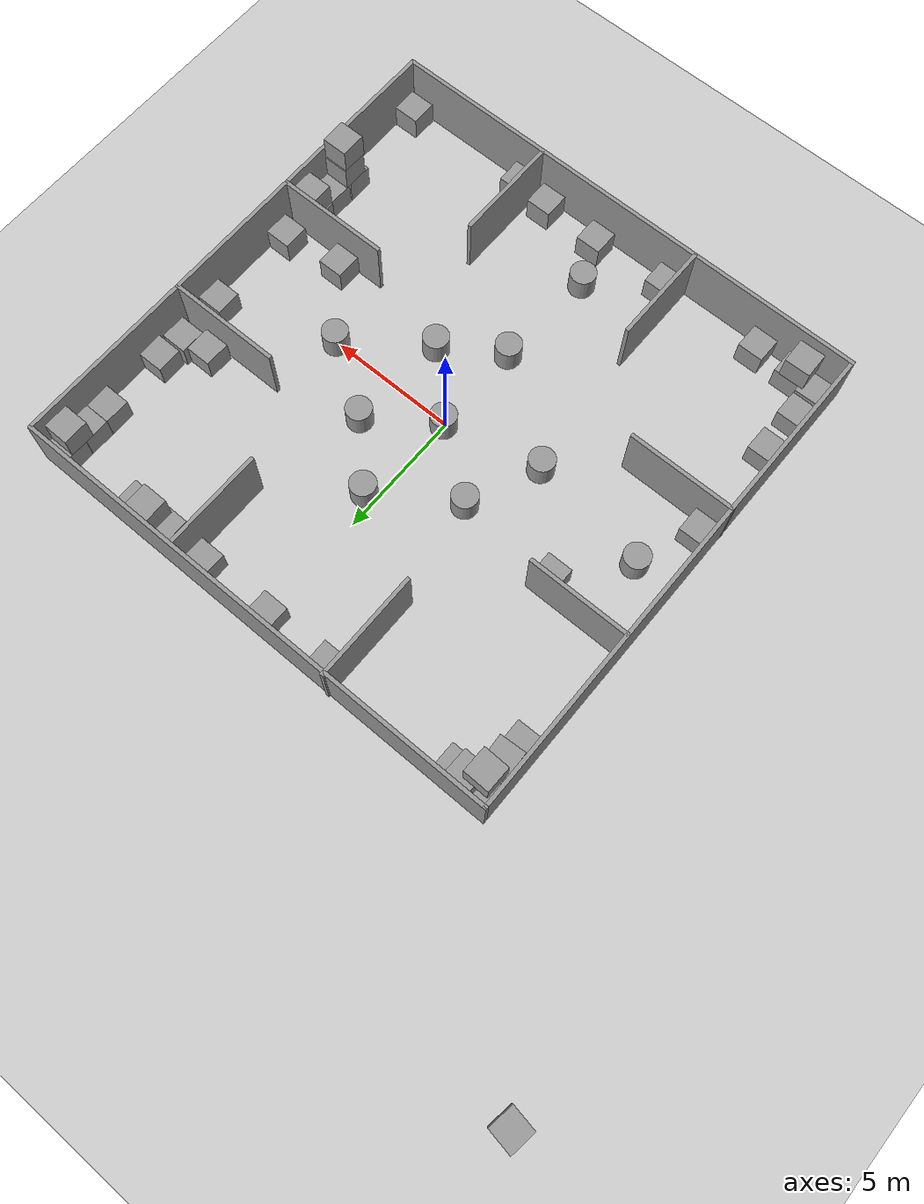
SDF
<sdf version="1.7">
 <world name="default">
  <light name="sun" type="directional">
   <pose>0 0 10 0 -0 0</pose>
   <diffuse>0.8 0.8 0.8 1</diffuse>
   <specular>0.2 0.2 0.2 1</specular>
   <attenuation>
    <range>1000</range>
    <constant>0.9</constant>
    <linear>0.01</linear>
    <quadratic>0.001</quadratic>
   </attenuation>
   <direction>-0.5 0.1 -0.9</direction>
   <spot><inner_angle>0</inner_angle><outer_angle>0</outer_angle><falloff>0</falloff></spot>
  </light>
  <model name="ground_plane">
   <static>1</static>
   <link name="link">
    <collision name="collision">
     <geometry><plane><normal>0 0 1</normal><size>100 100</size></plane></geometry>
     <surface>
      <contact><collide_bitmask>65535</collide_bitmask></contact>
      <friction><ode><mu>100</mu><mu2>50</mu2></ode></friction>
     </surface>
    </collision>
    <visual name="visual">
     <cast_shadows>0</cast_shadows>
     <geometry><plane><normal>0 0 1</normal><size>100 100</size></plane></geometry>
     <material>
      <script><uri>file://media/materials/scripts/gazebo.material</uri><name>Gazebo/Grey</name></script>
     </material>
    </visual>
   </link>
  </model>
  <gravity>0 0 -9.8</gravity>
  <magnetic_field>6e-06 2.3e-05 -4.2e-05</magnetic_field>
  <atmosphere type="adiabatic"/>
  <physics type="ode">
   <max_step_size>0.001</max_step_size>
   <real_time_factor>1</real_time_factor>
   <real_time_update_rate>1000</real_time_update_rate>
  </physics>
  <scene><ambient>0.4 0.4 0.4 1</ambient><background>0.7 0.7 0.7 1</background><shadows>1</shadows></scene>
  <spherical_coordinates>
   <surface_model>EARTH_WGS84</surface_model>
   <latitude_deg>0</latitude_deg>
   <longitude_deg>0</longitude_deg>
   <elevation>0</elevation>
   <heading_deg>0</heading_deg>
  </spherical_coordinates>
  <model name="Untitled">
   <pose>-0.022644 0.067356 0 0 -0 0</pose>
   <link name="Wall_0">
    <collision name="Wall_0_Collision">
     <geometry><box><size>20 0.15 2.5</size></box></geometry>
     <pose>0 0 1.25 0 -0 0</pose>
    </collision>
    <visual name="Wall_0_Visual">
     <pose>0 0 1.25 0 -0 0</pose>
     <geometry><box><size>20 0.15 2.5</size></box></geometry>
     <material>
      <script><uri>file://media/materials/scripts/gazebo.material</uri><name>Gazebo/Grey</name></script>
      <ambient>1 1 1 1</ambient>
     </material>
     <meta><layer>0</layer></meta>
    </visual>
    <pose>-9.91674 -0.030841 0 0 -0 -1.5708</pose>
   </link>
   <link name="Wall_11">
    <collision name="Wall_11_Collision">
     <geometry><box><size>4 0.15 2.5</size></box></geometry>
     <pose>0 0 1.25 0 -0 0</pose>
    </collision>
    <visual name="Wall_11_Visual">
     <pose>0 0 1.25 0 -0 0</pose>
     <geometry><box><size>4 0.15 2.5</size></box></geometry>
     <material>
      <script><uri>file://media/materials/scripts/gazebo.material</uri><name>Gazebo/Grey</name></script>
      <ambient>1 1 1 1</ambient>
     </material>
     <meta><layer>0</layer></meta>
    </visual>
    <pose>-7.94677 2.75708 0 0 -0 0</pose>
   </link>
   <link name="Wall_13">
    <collision name="Wall_13_Collision">
     <geometry><box><size>4.25 0.15 2.5</size></box></geometry>
     <pose>0 0 1.25 0 -0 0</pose>
    </collision>
    <visual name="Wall_13_Visual">
     <pose>0 0 1.25 0 -0 0</pose>
     <geometry><box><size>4.25 0.15 2.5</size></box></geometry>
     <material>
      <script><uri>file://media/materials/scripts/gazebo.material</uri><name>Gazebo/Grey</name></script>
      <ambient>1 1 1 1</ambient>
     </material>
     <meta><layer>0</layer></meta>
    </visual>
    <pose>-7.8833 -2.90348 0 0 -0 0</pose>
   </link>
   <link name="Wall_15">
    <collision name="Wall_15_Collision">
     <geometry><box><size>4.5 0.15 2.5</size></box></geometry>
     <pose>0 0 1.25 0 -0 0</pose>
    </collision>
    <visual name="Wall_15_Visual">
     <pose>0 0 1.25 0 -0 0</pose>
     <geometry><box><size>4.5 0.15 2.5</size></box></geometry>
     <material>
      <script><uri>file://media/materials/scripts/gazebo.material</uri><name>Gazebo/Grey</name></script>
      <ambient>1 1 1 1</ambient>
     </material>
     <meta><layer>0</layer></meta>
    </visual>
    <pose>7.7583 2.75123 0 0 -0 0</pose>
   </link>
   <link name="Wall_17">
    <collision name="Wall_17_Collision">
     <geometry><box><size>4.5 0.15 2.5</size></box></geometry>
     <pose>0 0 1.25 0 -0 0</pose>
    </collision>
    <visual name="Wall_17_Visual">
     <pose>0 0 1.25 0 -0 0</pose>
     <geometry><box><size>4.5 0.15 2.5</size></box></geometry>
     <material>
      <script><uri>file://media/materials/scripts/gazebo.material</uri><name>Gazebo/Grey</name></script>
      <ambient>1 1 1 1</ambient>
     </material>
     <meta><layer>0</layer></meta>
    </visual>
    <pose>7.74673 -2.90348 0 0 -0 0</pose>
   </link>
   <link name="Wall_19">
    <collision name="Wall_19_Collision">
     <geometry><box><size>4 0.15 2.5</size></box></geometry>
     <pose>0 0 1.25 0 -0 0</pose>
    </collision>
    <visual name="Wall_19_Visual">
     <pose>0 0 1.25 0 -0 0</pose>
     <geometry><box><size>4 0.15 2.5</size></box></geometry>
     <material>
      <script><uri>file://media/materials/scripts/gazebo.material</uri><name>Gazebo/Grey</name></script>
      <ambient>1 1 1 1</ambient>
     </material>
     <meta><layer>0</layer></meta>
    </visual>
    <pose>-3.22676 -7.96641 0 0 -0 -1.5708</pose>
   </link>
   <link name="Wall_21">
    <collision name="Wall_21_Collision">
     <geometry><box><size>4.25 0.15 2.5</size></box></geometry>
     <pose>0 0 1.25 0 -0 0</pose>
    </collision>
    <visual name="Wall_21_Visual">
     <pose>0 0 1.25 0 -0 0</pose>
     <geometry><box><size>4.25 0.15 2.5</size></box></geometry>
     <material>
      <script><uri>file://media/materials/scripts/gazebo.material</uri><name>Gazebo/Grey</name></script>
      <ambient>1 1 1 1</ambient>
     </material>
     <meta><layer>0</layer></meta>
    </visual>
    <pose>3.66436 -7.84529 0 0 -0 -1.5708</pose>
   </link>
   <link name="Wall_3">
    <collision name="Wall_3_Collision">
     <geometry><box><size>20 0.15 2.5</size></box></geometry>
     <pose>0 0 1.25 0 -0 0</pose>
    </collision>
    <visual name="Wall_3_Visual">
     <pose>0 0 1.25 0 -0 0</pose>
     <geometry><box><size>20 0.15 2.5</size></box></geometry>
     <material>
      <script><uri>file://media/materials/scripts/gazebo.material</uri><name>Gazebo/Grey</name></script>
      <ambient>1 1 1 1</ambient>
     </material>
     <meta><layer>0</layer></meta>
    </visual>
    <pose>0.008259 9.89416 0 0 -0 0</pose>
   </link>
   <link name="Wall_4">
    <collision name="Wall_4_Collision">
     <geometry><box><size>20 0.15 2.5</size></box></geometry>
     <pose>0 0 1.25 0 -0 0</pose>
    </collision>
    <visual name="Wall_4_Visual">
     <pose>0 0 1.25 0 -0 0</pose>
     <geometry><box><size>20 0.15 2.5</size></box></geometry>
     <material>
      <script><uri>file://media/materials/scripts/gazebo.material</uri><name>Gazebo/Grey</name></script>
      <ambient>1 1 1 1</ambient>
     </material>
     <meta><layer>0</layer></meta>
    </visual>
    <pose>9.93326 -0.030841 0 0 -0 -1.5708</pose>
   </link>
   <link name="Wall_5">
    <collision name="Wall_5_Collision">
     <geometry><box><size>20 0.15 2.5</size></box></geometry>
     <pose>0 0 1.25 0 -0 0</pose>
    </collision>
    <visual name="Wall_5_Visual">
     <pose>0 0 1.25 0 -0 0</pose>
     <geometry><box><size>20 0.15 2.5</size></box></geometry>
     <material>
      <script><uri>file://media/materials/scripts/gazebo.material</uri><name>Gazebo/Grey</name></script>
      <ambient>1 1 1 1</ambient>
     </material>
     <meta><layer>0</layer></meta>
    </visual>
    <pose>0.008259 -9.95584 0 0 -0 3.14159</pose>
   </link>
   <link name="Wall_7">
    <collision name="Wall_7_Collision">
     <geometry><box><size>4.25 0.15 2.5</size></box></geometry>
     <pose>0 0 1.25 0 -0 0</pose>
    </collision>
    <visual name="Wall_7_Visual">
     <pose>0 0 1.25 0 -0 0</pose>
     <geometry><box><size>4.25 0.15 2.5</size></box></geometry>
     <material>
      <script><uri>file://media/materials/scripts/gazebo.material</uri><name>Gazebo/Grey</name></script>
      <ambient>1 1 1 1</ambient>
     </material>
     <meta><layer>0</layer></meta>
    </visual>
    <pose>-3.34982 7.90584 0 0 -0 -1.5708</pose>
   </link>
   <link name="Wall_9">
    <collision name="Wall_9_Collision">
     <geometry><box><size>4 0.15 2.5</size></box></geometry>
     <pose>0 0 1.25 0 -0 0</pose>
    </collision>
    <visual name="Wall_9_Visual">
     <pose>0 0 1.25 0 -0 0</pose>
     <geometry><box><size>4 0.15 2.5</size></box></geometry>
     <material>
      <script><uri>file://media/materials/scripts/gazebo.material</uri><name>Gazebo/Grey</name></script>
      <ambient>1 1 1 1</ambient>
     </material>
     <meta><layer>0</layer></meta>
    </visual>
    <pose>3.41825 7.90779 0 0 -0 -1.5708</pose>
   </link>
   <static>1</static>
  </model>
  <model name="unit_cylinder">
   <pose>-2.51972 1.96821 0.499994 -2e-06 -0 -0</pose>
   <link name="link">
    <inertial>
     <mass>1</mass>
     <inertia><ixx>0.145833</ixx><ixy>0</ixy><ixz>0</ixz><iyy>0.145833</iyy><iyz>0</iyz><izz>0.125</izz></inertia>
    </inertial>
    <collision name="collision">
     <geometry><cylinder><radius>0.5</radius><length>1</length></cylinder></geometry>
    </collision>
    <visual name="visual">
     <geometry><cylinder><radius>0.5</radius><length>1</length></cylinder></geometry>
     <material>
      <script><name>Gazebo/Grey</name><uri>file://media/materials/scripts/gazebo.material</uri></script>
     </material>
    </visual>
   </link>
  </model>
  <model name="unit_cylinder_0">
   <pose>-3.69703 -0.791961 0.499994 -2e-06 -0 -0</pose>
   <link name="link">
    <inertial>
     <mass>1</mass>
     <inertia><ixx>0.145833</ixx><ixy>0</ixy><ixz>0</ixz><iyy>0.145833</iyy><iyz>0</iyz><izz>0.125</izz></inertia>
    </inertial>
    <collision name="collision">
     <geometry><cylinder><radius>0.5</radius><length>1</length></cylinder></geometry>
    </collision>
    <visual name="visual">
     <geometry><cylinder><radius>0.5</radius><length>1</length></cylinder></geometry>
     <material>
      <script><name>Gazebo/Grey</name><uri>file://media/materials/scripts/gazebo.material</uri></script>
     </material>
    </visual>
   </link>
  </model>
  <model name="unit_cylinder_1">
   <pose>0.011534 0.090169 0.499994 -2e-06 -0 -0</pose>
   <link name="link">
    <inertial>
     <mass>1</mass>
     <inertia><ixx>0.145833</ixx><ixy>0</ixy><ixz>0</ixz><iyy>0.145833</iyy><iyz>0</iyz><izz>0.125</izz></inertia>
    </inertial>
    <collision name="collision">
     <geometry><cylinder><radius>0.5</radius><length>1</length></cylinder></geometry>
    </collision>
    <visual name="visual">
     <geometry><cylinder><radius>0.5</radius><length>1</length></cylinder></geometry>
     <material>
      <script><name>Gazebo/Grey</name><uri>file://media/materials/scripts/gazebo.material</uri></script>
     </material>
    </visual>
   </link>
  </model>
  <model name="unit_cylinder_2">
   <pose>0.457979 3.87892 0.499996 2e-06 -0 0</pose>
   <link name="link">
    <inertial>
     <mass>1</mass>
     <inertia><ixx>0.145833</ixx><ixy>0</ixy><ixz>0</ixz><iyy>0.145833</iyy><iyz>0</iyz><izz>0.125</izz></inertia>
    </inertial>
    <collision name="collision">
     <geometry><cylinder><radius>0.5</radius><length>1</length></cylinder></geometry>
    </collision>
    <visual name="visual">
     <geometry><cylinder><radius>0.5</radius><length>1</length></cylinder></geometry>
     <material>
      <script><name>Gazebo/Grey</name><uri>file://media/materials/scripts/gazebo.material</uri></script>
     </material>
    </visual>
   </link>
  </model>
  <model name="unit_cylinder_3">
   <pose>5.15271 0.052836 0.499996 2e-06 -0 0</pose>
   <link name="link">
    <inertial>
     <mass>1</mass>
     <inertia><ixx>0.145833</ixx><ixy>0</ixy><ixz>0</ixz><iyy>0.145833</iyy><iyz>0</iyz><izz>0.125</izz></inertia>
    </inertial>
    <collision name="collision">
     <geometry><cylinder><radius>0.5</radius><length>1</length></cylinder></geometry>
    </collision>
    <visual name="visual">
     <geometry><cylinder><radius>0.5</radius><length>1</length></cylinder></geometry>
     <material>
      <script><name>Gazebo/Grey</name><uri>file://media/materials/scripts/gazebo.material</uri></script>
     </material>
    </visual>
   </link>
  </model>
  <model name="unit_cylinder_4">
   <pose>0.030398 -3.55191 0.499996 2e-06 -0 0</pose>
   <link name="link">
    <inertial>
     <mass>1</mass>
     <inertia><ixx>0.145833</ixx><ixy>0</ixy><ixz>0</ixz><iyy>0.145833</iyy><iyz>0</iyz><izz>0.125</izz></inertia>
    </inertial>
    <collision name="collision">
     <geometry><cylinder><radius>0.5</radius><length>1</length></cylinder></geometry>
    </collision>
    <visual name="visual">
     <geometry><cylinder><radius>0.5</radius><length>1</length></cylinder></geometry>
     <material>
      <script><name>Gazebo/Grey</name><uri>file://media/materials/scripts/gazebo.material</uri></script>
     </material>
    </visual>
   </link>
  </model>
  <model name="unit_box">
   <pose>-9.33373 9.36841 0.5 0 -0 0.009436</pose>
   <link name="link">
    <inertial>
     <mass>1</mass>
     <inertia>
      <ixx>0.166667</ixx>
      <ixy>0</ixy>
      <ixz>0</ixz>
      <iyy>0.166667</iyy>
      <iyz>0</iyz>
      <izz>0.166667</izz>
     </inertia>
    </inertial>
    <collision name="collision"><geometry><box><size>1 1 1</size></box></geometry></collision>
    <visual name="visual">
     <geometry><box><size>1 1 1</size></box></geometry>
     <material>
      <script><name>Gazebo/Grey</name><uri>file://media/materials/scripts/gazebo.material</uri></script>
     </material>
    </visual>
   </link>
  </model>
  <model name="unit_box_0">
   <pose>-9.34149 7.3644 0.500002 3e-06 -1e-05 0.014004</pose>
   <link name="link">
    <inertial>
     <mass>1</mass>
     <inertia>
      <ixx>0.166667</ixx>
      <ixy>0</ixy>
      <ixz>0</ixz>
      <iyy>0.166667</iyy>
      <iyz>0</iyz>
      <izz>0.166667</izz>
     </inertia>
    </inertial>
    <collision name="collision"><geometry><box><size>1 1 1</size></box></geometry></collision>
    <visual name="visual">
     <geometry><box><size>1 1 1</size></box></geometry>
     <material>
      <script><name>Gazebo/Grey</name><uri>file://media/materials/scripts/gazebo.material</uri></script>
     </material>
    </visual>
   </link>
  </model>
  <model name="unit_box_1">
   <pose>-16.3234 16.4438 0.499996 -3.14159 -9e-06 2.98602</pose>
   <link name="link">
    <inertial>
     <mass>1</mass>
     <inertia>
      <ixx>0.166667</ixx>
      <ixy>0</ixy>
      <ixz>0</ixz>
      <iyy>0.166667</iyy>
      <iyz>0</iyz>
      <izz>0.166667</izz>
     </inertia>
    </inertial>
    <collision name="collision"><geometry><box><size>1 1 1</size></box></geometry></collision>
    <visual name="visual">
     <geometry><box><size>1 1 1</size></box></geometry>
     <material>
      <script><name>Gazebo/Grey</name><uri>file://media/materials/scripts/gazebo.material</uri></script>
     </material>
    </visual>
   </link>
  </model>
  <model name="unit_box_2">
   <pose>-8.19201 9.29763 0.499975 -2.7e-05 -3.2e-05 -0.009539</pose>
   <link name="link">
    <inertial>
     <mass>1</mass>
     <inertia>
      <ixx>0.166667</ixx>
      <ixy>0</ixy>
      <ixz>0</ixz>
      <iyy>0.166667</iyy>
      <iyz>0</iyz>
      <izz>0.166667</izz>
     </inertia>
    </inertial>
    <collision name="collision"><geometry><box><size>1 1 1</size></box></geometry></collision>
    <visual name="visual">
     <geometry><box><size>1 1 1</size></box></geometry>
     <material>
      <script><name>Gazebo/Grey</name><uri>file://media/materials/scripts/gazebo.material</uri></script>
     </material>
    </visual>
   </link>
  </model>
  <model name="unit_box_3">
   <pose>-8.73523 9.37548 1.49999 -3.14157 2.8e-05 3.1202</pose>
   <link name="link">
    <inertial>
     <mass>1</mass>
     <inertia>
      <ixx>0.166667</ixx>
      <ixy>0</ixy>
      <ixz>0</ixz>
      <iyy>0.166667</iyy>
      <iyz>0</iyz>
      <izz>0.166667</izz>
     </inertia>
    </inertial>
    <collision name="collision"><geometry><box><size>1 1 1</size></box></geometry></collision>
    <visual name="visual">
     <geometry><box><size>1 1 1</size></box></geometry>
     <material>
      <script><name>Gazebo/Grey</name><uri>file://media/materials/scripts/gazebo.material</uri></script>
     </material>
    </visual>
   </link>
  </model>
  <model name="unit_box_4">
   <pose>-9.24022 8.36594 0.50002 -6e-06 -3.4e-05 0.014035</pose>
   <link name="link">
    <inertial>
     <mass>1</mass>
     <inertia>
      <ixx>0.166667</ixx>
      <ixy>0</ixy>
      <ixz>0</ixz>
      <iyy>0.166667</iyy>
      <iyz>0</iyz>
      <izz>0.166667</izz>
     </inertia>
    </inertial>
    <collision name="collision"><geometry><box><size>1 1 1</size></box></geometry></collision>
    <visual name="visual">
     <geometry><box><size>1 1 1</size></box></geometry>
     <material>
      <script><name>Gazebo/Grey</name><uri>file://media/materials/scripts/gazebo.material</uri></script>
     </material>
    </visual>
   </link>
  </model>
  <model name="unit_box_5">
   <pose>-9.33075 8.2872 1.49998 -0.000165 -9.1e-05 0.06148</pose>
   <link name="link">
    <inertial>
     <mass>1</mass>
     <inertia>
      <ixx>0.166667</ixx>
      <ixy>0</ixy>
      <ixz>0</ixz>
      <iyy>0.166667</iyy>
      <iyz>0</iyz>
      <izz>0.166667</izz>
     </inertia>
    </inertial>
    <collision name="collision"><geometry><box><size>1 1 1</size></box></geometry></collision>
    <visual name="visual">
     <geometry><box><size>1 1 1</size></box></geometry>
     <material>
      <script><name>Gazebo/Grey</name><uri>file://media/materials/scripts/gazebo.material</uri></script>
     </material>
    </visual>
   </link>
  </model>
  <model name="unit_box_6">
   <pose>-9.27927 9.13106 2.49998 -4.5e-05 -0.000261 -0.017258</pose>
   <link name="link">
    <inertial>
     <mass>1</mass>
     <inertia>
      <ixx>0.166667</ixx>
      <ixy>0</ixy>
      <ixz>0</ixz>
      <iyy>0.166667</iyy>
      <iyz>0</iyz>
      <izz>0.166667</izz>
     </inertia>
    </inertial>
    <collision name="collision"><geometry><box><size>1 1 1</size></box></geometry></collision>
    <visual name="visual">
     <geometry><box><size>1 1 1</size></box></geometry>
     <material>
      <script><name>Gazebo/Grey</name><uri>file://media/materials/scripts/gazebo.material</uri></script>
     </material>
    </visual>
   </link>
  </model>
  <model name="unit_box_7">
   <pose>-2.79621 9.38516 0.499995 -0 -1e-05 0.002491</pose>
   <link name="link">
    <inertial>
     <mass>1</mass>
     <inertia>
      <ixx>0.166667</ixx>
      <ixy>0</ixy>
      <ixz>0</ixz>
      <iyy>0.166667</iyy>
      <iyz>0</iyz>
      <izz>0.166667</izz>
     </inertia>
    </inertial>
    <collision name="collision"><geometry><box><size>1 1 1</size></box></geometry></collision>
    <visual name="visual">
     <geometry><box><size>1 1 1</size></box></geometry>
     <material>
      <script><name>Gazebo/Grey</name><uri>file://media/materials/scripts/gazebo.material</uri></script>
     </material>
    </visual>
   </link>
  </model>
  <model name="unit_box_8">
   <pose>2.7981 9.37789 0.499995 0 1e-05 0</pose>
   <link name="link">
    <inertial>
     <mass>1</mass>
     <inertia>
      <ixx>0.166667</ixx>
      <ixy>0</ixy>
      <ixz>0</ixz>
      <iyy>0.166667</iyy>
      <iyz>0</iyz>
      <izz>0.166667</izz>
     </inertia>
    </inertial>
    <collision name="collision"><geometry><box><size>1 1 1</size></box></geometry></collision>
    <visual name="visual">
     <geometry><box><size>1 1 1</size></box></geometry>
     <material>
      <script><name>Gazebo/Grey</name><uri>file://media/materials/scripts/gazebo.material</uri></script>
     </material>
    </visual>
   </link>
  </model>
  <model name="unit_box_9">
   <pose>-0.107896 9.38651 0.5 0 0 -4e-06</pose>
   <link name="link">
    <inertial>
     <mass>1</mass>
     <inertia>
      <ixx>0.166667</ixx>
      <ixy>0</ixy>
      <ixz>0</ixz>
      <iyy>0.166667</iyy>
      <iyz>0</iyz>
      <izz>0.166667</izz>
     </inertia>
    </inertial>
    <collision name="collision"><geometry><box><size>1 1 1</size></box></geometry></collision>
    <visual name="visual">
     <geometry><box><size>1 1 1</size></box></geometry>
     <material>
      <script><name>Gazebo/Grey</name><uri>file://media/materials/scripts/gazebo.material</uri></script>
     </material>
    </visual>
   </link>
  </model>
  <model name="unit_box_10">
   <pose>9.3312 9.38343 0.499984 -1e-06 -1e-06 -0.004896</pose>
   <link name="link">
    <inertial>
     <mass>1</mass>
     <inertia>
      <ixx>0.166667</ixx>
      <ixy>0</ixy>
      <ixz>0</ixz>
      <iyy>0.166667</iyy>
      <iyz>0</iyz>
      <izz>0.166667</izz>
     </inertia>
    </inertial>
    <collision name="collision"><geometry><box><size>1 1 1</size></box></geometry></collision>
    <visual name="visual">
     <geometry><box><size>1 1 1</size></box></geometry>
     <material>
      <script><name>Gazebo/Grey</name><uri>file://media/materials/scripts/gazebo.material</uri></script>
     </material>
    </visual>
   </link>
  </model>
  <model name="unit_box_11">
   <pose>9.33141 8.37498 0.500002 0 -4e-06 -0.002129</pose>
   <link name="link">
    <inertial>
     <mass>1</mass>
     <inertia>
      <ixx>0.166667</ixx>
      <ixy>0</ixy>
      <ixz>0</ixz>
      <iyy>0.166667</iyy>
      <iyz>0</iyz>
      <izz>0.166667</izz>
     </inertia>
    </inertial>
    <collision name="collision"><geometry><box><size>1 1 1</size></box></geometry></collision>
    <visual name="visual">
     <geometry><box><size>1 1 1</size></box></geometry>
     <material>
      <script><name>Gazebo/Grey</name><uri>file://media/materials/scripts/gazebo.material</uri></script>
     </material>
    </visual>
   </link>
  </model>
  <model name="unit_box_12">
   <pose>9.33243 7.37199 0.499995 0 -1e-05 0.002532</pose>
   <link name="link">
    <inertial>
     <mass>1</mass>
     <inertia>
      <ixx>0.166667</ixx>
      <ixy>0</ixy>
      <ixz>0</ixz>
      <iyy>0.166667</iyy>
      <iyz>0</iyz>
      <izz>0.166667</izz>
     </inertia>
    </inertial>
    <collision name="collision"><geometry><box><size>1 1 1</size></box></geometry></collision>
    <visual name="visual">
     <geometry><box><size>1 1 1</size></box></geometry>
     <material>
      <script><name>Gazebo/Grey</name><uri>file://media/materials/scripts/gazebo.material</uri></script>
     </material>
    </visual>
   </link>
  </model>
  <model name="unit_box_13">
   <pose>9.33186 9.04643 1.49998 -2e-05 1.3e-05 -0.007032</pose>
   <link name="link">
    <inertial>
     <mass>1</mass>
     <inertia>
      <ixx>0.166667</ixx>
      <ixy>0</ixy>
      <ixz>0</ixz>
      <iyy>0.166667</iyy>
      <iyz>0</iyz>
      <izz>0.166667</izz>
     </inertia>
    </inertial>
    <collision name="collision"><geometry><box><size>1 1 1</size></box></geometry></collision>
    <visual name="visual">
     <geometry><box><size>1 1 1</size></box></geometry>
     <material>
      <script><name>Gazebo/Grey</name><uri>file://media/materials/scripts/gazebo.material</uri></script>
     </material>
    </visual>
   </link>
  </model>
  <model name="unit_box_14">
   <pose>4.59854 9.29065 0.5 0 -0 0.000502</pose>
   <link name="link">
    <inertial>
     <mass>1</mass>
     <inertia>
      <ixx>0.166667</ixx>
      <ixy>0</ixy>
      <ixz>0</ixz>
      <iyy>0.166667</iyy>
      <iyz>0</iyz>
      <izz>0.166667</izz>
     </inertia>
    </inertial>
    <collision name="collision"><geometry><box><size>1 1 1</size></box></geometry></collision>
    <visual name="visual">
     <geometry><box><size>1 1 1</size></box></geometry>
     <material>
      <script><name>Gazebo/Grey</name><uri>file://media/materials/scripts/gazebo.material</uri></script>
     </material>
    </visual>
   </link>
  </model>
  <model name="unit_box_15">
   <pose>9.33562 1.68213 0.499995 -1e-05 -0 -6e-06</pose>
   <link name="link">
    <inertial>
     <mass>1</mass>
     <inertia>
      <ixx>0.166667</ixx>
      <ixy>0</ixy>
      <ixz>0</ixz>
      <iyy>0.166667</iyy>
      <iyz>0</iyz>
      <izz>0.166667</izz>
     </inertia>
    </inertial>
    <collision name="collision"><geometry><box><size>1 1 1</size></box></geometry></collision>
    <visual name="visual">
     <geometry><box><size>1 1 1</size></box></geometry>
     <material>
      <script><name>Gazebo/Grey</name><uri>file://media/materials/scripts/gazebo.material</uri></script>
     </material>
    </visual>
   </link>
  </model>
  <model name="unit_cylinder_5">
   <pose>2.4624 1.81745 0.499994 -3e-06 -1e-06 -0</pose>
   <link name="link">
    <inertial>
     <mass>1</mass>
     <inertia><ixx>0.145833</ixx><ixy>0</ixy><ixz>0</ixz><iyy>0.145833</iyy><iyz>0</iyz><izz>0.125</izz></inertia>
    </inertial>
    <collision name="collision">
     <geometry><cylinder><radius>0.5</radius><length>1</length></cylinder></geometry>
    </collision>
    <visual name="visual">
     <geometry><cylinder><radius>0.5</radius><length>1</length></cylinder></geometry>
     <material>
      <script><name>Gazebo/Grey</name><uri>file://media/materials/scripts/gazebo.material</uri></script>
     </material>
    </visual>
   </link>
  </model>
  <model name="unit_cylinder_6">
   <pose>2.22137 -2.10976 0.499994 -3e-06 -1e-06 -0</pose>
   <link name="link">
    <inertial>
     <mass>1</mass>
     <inertia><ixx>0.145833</ixx><ixy>0</ixy><ixz>0</ixz><iyy>0.145833</iyy><iyz>0</iyz><izz>0.125</izz></inertia>
    </inertial>
    <collision name="collision">
     <geometry><cylinder><radius>0.5</radius><length>1</length></cylinder></geometry>
    </collision>
    <visual name="visual">
     <geometry><cylinder><radius>0.5</radius><length>1</length></cylinder></geometry>
     <material>
      <script><name>Gazebo/Grey</name><uri>file://media/materials/scripts/gazebo.material</uri></script>
     </material>
    </visual>
   </link>
  </model>
  <model name="unit_cylinder_7">
   <pose>-8.3736 -0.074974 0.499994 -3e-06 -1e-06 -0</pose>
   <link name="link">
    <inertial>
     <mass>1</mass>
     <inertia><ixx>0.145833</ixx><ixy>0</ixy><ixz>0</ixz><iyy>0.145833</iyy><iyz>0</iyz><izz>0.125</izz></inertia>
    </inertial>
    <collision name="collision">
     <geometry><cylinder><radius>0.5</radius><length>1</length></cylinder></geometry>
    </collision>
    <visual name="visual">
     <geometry><cylinder><radius>0.5</radius><length>1</length></cylinder></geometry>
     <material>
      <script><name>Gazebo/Grey</name><uri>file://media/materials/scripts/gazebo.material</uri></script>
     </material>
    </visual>
   </link>
  </model>
  <model name="unit_cylinder_8">
   <pose>-0.192852 -7.59936 0.499996 3e-06 1e-06 -0</pose>
   <link name="link">
    <inertial>
     <mass>1</mass>
     <inertia><ixx>0.145833</ixx><ixy>0</ixy><ixz>0</ixz><iyy>0.145833</iyy><iyz>0</iyz><izz>0.125</izz></inertia>
    </inertial>
    <collision name="collision">
     <geometry><cylinder><radius>0.5</radius><length>1</length></cylinder></geometry>
    </collision>
    <visual name="visual">
     <geometry><cylinder><radius>0.5</radius><length>1</length></cylinder></geometry>
     <material>
      <script><name>Gazebo/Grey</name><uri>file://media/materials/scripts/gazebo.material</uri></script>
     </material>
    </visual>
   </link>
  </model>
  <model name="unit_box_16">
   <pose>-9.35028 -9.11788 0.499997 7e-06 -0 0.024398</pose>
   <link name="link">
    <inertial>
     <mass>1</mass>
     <inertia>
      <ixx>0.166667</ixx>
      <ixy>0</ixy>
      <ixz>0</ixz>
      <iyy>0.166667</iyy>
      <iyz>0</iyz>
      <izz>0.166667</izz>
     </inertia>
    </inertial>
    <collision name="collision"><geometry><box><size>1 1 1</size></box></geometry></collision>
    <visual name="visual">
     <geometry><box><size>1 1 1</size></box></geometry>
     <material>
      <script><name>Gazebo/Grey</name><uri>file://media/materials/scripts/gazebo.material</uri></script>
     </material>
    </visual>
   </link>
  </model>
  <model name="unit_box_17">
   <pose>-9.3644 -6.24452 0.5 0 0 -4e-06</pose>
   <link name="link">
    <inertial>
     <mass>1</mass>
     <inertia>
      <ixx>0.166667</ixx>
      <ixy>0</ixy>
      <ixz>0</ixz>
      <iyy>0.166667</iyy>
      <iyz>0</iyz>
      <izz>0.166667</izz>
     </inertia>
    </inertial>
    <collision name="collision"><geometry><box><size>1 1 1</size></box></geometry></collision>
    <visual name="visual">
     <geometry><box><size>1 1 1</size></box></geometry>
     <material>
      <script><name>Gazebo/Grey</name><uri>file://media/materials/scripts/gazebo.material</uri></script>
     </material>
    </visual>
   </link>
  </model>
  <model name="unit_box_17_clone">
   <pose>-8.33799 -9.30461 0.499997 0 -6e-06 0.006229</pose>
   <link name="link">
    <inertial>
     <mass>1</mass>
     <inertia>
      <ixx>0.166667</ixx>
      <ixy>0</ixy>
      <ixz>0</ixz>
      <iyy>0.166667</iyy>
      <iyz>0</iyz>
      <izz>0.166667</izz>
     </inertia>
    </inertial>
    <collision name="collision"><geometry><box><size>1 1 1</size></box></geometry></collision>
    <visual name="visual">
     <geometry><box><size>1 1 1</size></box></geometry>
     <material>
      <script><name>Gazebo/Grey</name><uri>file://media/materials/scripts/gazebo.material</uri></script>
     </material>
    </visual>
   </link>
  </model>
  <model name="unit_box_17_clone_0">
   <pose>-6.77109 -9.31289 0.499995 1e-05 -0 0.000926</pose>
   <link name="link">
    <inertial>
     <mass>1</mass>
     <inertia>
      <ixx>0.166667</ixx>
      <ixy>0</ixy>
      <ixz>0</ixz>
      <iyy>0.166667</iyy>
      <iyz>0</iyz>
      <izz>0.166667</izz>
     </inertia>
    </inertial>
    <collision name="collision"><geometry><box><size>1 1 1</size></box></geometry></collision>
    <visual name="visual">
     <geometry><box><size>1 1 1</size></box></geometry>
     <material>
      <script><name>Gazebo/Grey</name><uri>file://media/materials/scripts/gazebo.material</uri></script>
     </material>
    </visual>
   </link>
  </model>
  <model name="unit_box_17_clone_1">
   <pose>-8.53116 -9.2873 1.49999 1.5708 3e-06 0.026146</pose>
   <link name="link">
    <inertial>
     <mass>1</mass>
     <inertia>
      <ixx>0.166667</ixx>
      <ixy>0</ixy>
      <ixz>0</ixz>
      <iyy>0.166667</iyy>
      <iyz>0</iyz>
      <izz>0.166667</izz>
     </inertia>
    </inertial>
    <collision name="collision"><geometry><box><size>1 1 1</size></box></geometry></collision>
    <visual name="visual">
     <geometry><box><size>1 1 1</size></box></geometry>
     <material>
      <script><name>Gazebo/Grey</name><uri>file://media/materials/scripts/gazebo.material</uri></script>
     </material>
    </visual>
   </link>
  </model>
  <model name="unit_box_17_clone_2">
   <pose>-9.3644 -7.99999 0.499995 0 1e-05 -5e-06</pose>
   <link name="link">
    <inertial>
     <mass>1</mass>
     <inertia>
      <ixx>0.166667</ixx>
      <ixy>0</ixy>
      <ixz>0</ixz>
      <iyy>0.166667</iyy>
      <iyz>0</iyz>
      <izz>0.166667</izz>
     </inertia>
    </inertial>
    <collision name="collision"><geometry><box><size>1 1 1</size></box></geometry></collision>
    <visual name="visual">
     <geometry><box><size>1 1 1</size></box></geometry>
     <material>
      <script><name>Gazebo/Grey</name><uri>file://media/materials/scripts/gazebo.material</uri></script>
     </material>
    </visual>
   </link>
  </model>
  <model name="unit_box_18">
   <pose>9.28189 -3.41408 0.5 0 1e-06 -0.001295</pose>
   <link name="link">
    <inertial>
     <mass>1</mass>
     <inertia>
      <ixx>0.166667</ixx>
      <ixy>0</ixy>
      <ixz>0</ixz>
      <iyy>0.166667</iyy>
      <iyz>0</iyz>
      <izz>0.166667</izz>
     </inertia>
    </inertial>
    <collision name="collision"><geometry><box><size>1 1 1</size></box></geometry></collision>
    <visual name="visual">
     <geometry><box><size>1 1 1</size></box></geometry>
     <material>
      <script><name>Gazebo/Grey</name><uri>file://media/materials/scripts/gazebo.material</uri></script>
     </material>
    </visual>
   </link>
  </model>
  <model name="unit_box_19">
   <pose>9.33385 -4.41415 0.5 1e-06 3e-06 -0.001286</pose>
   <link name="link">
    <inertial>
     <mass>1</mass>
     <inertia>
      <ixx>0.166667</ixx>
      <ixy>0</ixy>
      <ixz>0</ixz>
      <iyy>0.166667</iyy>
      <iyz>0</iyz>
      <izz>0.166667</izz>
     </inertia>
    </inertial>
    <collision name="collision"><geometry><box><size>1 1 1</size></box></geometry></collision>
    <visual name="visual">
     <geometry><box><size>1 1 1</size></box></geometry>
     <material>
      <script><name>Gazebo/Grey</name><uri>file://media/materials/scripts/gazebo.material</uri></script>
     </material>
    </visual>
   </link>
  </model>
  <model name="unit_box_20">
   <pose>9.32748 -5.47283 0.499997 -5e-06 0 -0.002303</pose>
   <link name="link">
    <inertial>
     <mass>1</mass>
     <inertia>
      <ixx>0.166667</ixx>
      <ixy>0</ixy>
      <ixz>0</ixz>
      <iyy>0.166667</iyy>
      <iyz>0</iyz>
      <izz>0.166667</izz>
     </inertia>
    </inertial>
    <collision name="collision"><geometry><box><size>1 1 1</size></box></geometry></collision>
    <visual name="visual">
     <geometry><box><size>1 1 1</size></box></geometry>
     <material>
      <script><name>Gazebo/Grey</name><uri>file://media/materials/scripts/gazebo.material</uri></script>
     </material>
    </visual>
   </link>
  </model>
  <model name="unit_box_20_clone">
   <pose>4.21722 -9.31272 0.499995 -1e-05 -0 -0.000909</pose>
   <link name="link">
    <inertial>
     <mass>1</mass>
     <inertia>
      <ixx>0.166667</ixx>
      <ixy>0</ixy>
      <ixz>0</ixz>
      <iyy>0.166667</iyy>
      <iyz>0</iyz>
      <izz>0.166667</izz>
     </inertia>
    </inertial>
    <collision name="collision"><geometry><box><size>1 1 1</size></box></geometry></collision>
    <visual name="visual">
     <geometry><box><size>1 1 1</size></box></geometry>
     <material>
      <script><name>Gazebo/Grey</name><uri>file://media/materials/scripts/gazebo.material</uri></script>
     </material>
    </visual>
   </link>
  </model>
  <model name="unit_box_20_clone_0">
   <pose>9.33337 -5.29233 1.49995 1.4e-05 2e-06 -0.003779</pose>
   <link name="link">
    <inertial>
     <mass>1</mass>
     <inertia>
      <ixx>0.166667</ixx>
      <ixy>0</ixy>
      <ixz>0</ixz>
      <iyy>0.166667</iyy>
      <iyz>0</iyz>
      <izz>0.166667</izz>
     </inertia>
    </inertial>
    <collision name="collision"><geometry><box><size>1 1 1</size></box></geometry></collision>
    <visual name="visual">
     <geometry><box><size>1 1 1</size></box></geometry>
     <material>
      <script><name>Gazebo/Grey</name><uri>file://media/materials/scripts/gazebo.material</uri></script>
     </material>
    </visual>
   </link>
  </model>
  <model name="unit_box_20_clone_1">
   <pose>9.33353 -5.32779 2.49993 1.9e-05 -0 -0.000256</pose>
   <link name="link">
    <inertial>
     <mass>1</mass>
     <inertia>
      <ixx>0.166667</ixx>
      <ixy>0</ixy>
      <ixz>0</ixz>
      <iyy>0.166667</iyy>
      <iyz>0</iyz>
      <izz>0.166667</izz>
     </inertia>
    </inertial>
    <collision name="collision"><geometry><box><size>1 1 1</size></box></geometry></collision>
    <visual name="visual">
     <geometry><box><size>1 1 1</size></box></geometry>
     <material>
      <script><name>Gazebo/Grey</name><uri>file://media/materials/scripts/gazebo.material</uri></script>
     </material>
    </visual>
   </link>
  </model>
  <model name="unit_box_21">
   <pose>9.33542 -3.43489 1.5 1e-06 -3e-06 -0.000102</pose>
   <link name="link">
    <inertial>
     <mass>1</mass>
     <inertia>
      <ixx>0.166667</ixx>
      <ixy>0</ixy>
      <ixz>0</ixz>
      <iyy>0.166667</iyy>
      <iyz>0</iyz>
      <izz>0.166667</izz>
     </inertia>
    </inertial>
    <collision name="collision"><geometry><box><size>1 1 1</size></box></geometry></collision>
    <visual name="visual">
     <geometry><box><size>1 1 1</size></box></geometry>
     <material>
      <script><name>Gazebo/Grey</name><uri>file://media/materials/scripts/gazebo.material</uri></script>
     </material>
    </visual>
   </link>
  </model>
  <model name="unit_box_22">
   <pose>9.33559 -9.23505 0.499995 0 1e-05 -6e-06</pose>
   <link name="link">
    <inertial>
     <mass>1</mass>
     <inertia>
      <ixx>0.166667</ixx>
      <ixy>0</ixy>
      <ixz>0</ixz>
      <iyy>0.166667</iyy>
      <iyz>0</iyz>
      <izz>0.166667</izz>
     </inertia>
    </inertial>
    <collision name="collision"><geometry><box><size>1 1 1</size></box></geometry></collision>
    <visual name="visual">
     <geometry><box><size>1 1 1</size></box></geometry>
     <material>
      <script><name>Gazebo/Grey</name><uri>file://media/materials/scripts/gazebo.material</uri></script>
     </material>
    </visual>
   </link>
  </model>
  <model name="unit_box_23">
   <pose>5.99474 9.30545 0.500002 5e-06 2e-06 -0.000458</pose>
   <link name="link">
    <inertial>
     <mass>1</mass>
     <inertia>
      <ixx>0.166667</ixx>
      <ixy>0</ixy>
      <ixz>0</ixz>
      <iyy>0.166667</iyy>
      <iyz>0</iyz>
      <izz>0.166667</izz>
     </inertia>
    </inertial>
    <collision name="collision"><geometry><box><size>1 1 1</size></box></geometry></collision>
    <visual name="visual">
     <geometry><box><size>1 1 1</size></box></geometry>
     <material>
      <script><name>Gazebo/Grey</name><uri>file://media/materials/scripts/gazebo.material</uri></script>
     </material>
    </visual>
   </link>
  </model>
  <model name="unit_box_24">
   <pose>5.22577 9.3863 1.50001 1.9e-05 1e-06 -0.000172</pose>
   <link name="link">
    <inertial>
     <mass>1</mass>
     <inertia>
      <ixx>0.166667</ixx>
      <ixy>0</ixy>
      <ixz>0</ixz>
      <iyy>0.166667</iyy>
      <iyz>0</iyz>
      <izz>0.166667</izz>
     </inertia>
    </inertial>
    <collision name="collision"><geometry><box><size>1 1 1</size></box></geometry></collision>
    <visual name="visual">
     <geometry><box><size>1 1 1</size></box></geometry>
     <material>
      <script><name>Gazebo/Grey</name><uri>file://media/materials/scripts/gazebo.material</uri></script>
     </material>
    </visual>
   </link>
  </model>
  <model name="unit_box_25">
   <pose>9.22212 3.65648 0.499995 -1e-05 -0 -0</pose>
   <link name="link">
    <inertial>
     <mass>1</mass>
     <inertia>
      <ixx>0.166667</ixx>
      <ixy>0</ixy>
      <ixz>0</ixz>
      <iyy>0.166667</iyy>
      <iyz>0</iyz>
      <izz>0.166667</izz>
     </inertia>
    </inertial>
    <collision name="collision"><geometry><box><size>1 1 1</size></box></geometry></collision>
    <visual name="visual">
     <geometry><box><size>1 1 1</size></box></geometry>
     <material>
      <script><name>Gazebo/Grey</name><uri>file://media/materials/scripts/gazebo.material</uri></script>
     </material>
    </visual>
   </link>
  </model>
  <model name="unit_box_26">
   <pose>8.20457 3.46673 0.499995 0 1e-05 0</pose>
   <link name="link">
    <inertial>
     <mass>1</mass>
     <inertia>
      <ixx>0.166667</ixx>
      <ixy>0</ixy>
      <ixz>0</ixz>
      <iyy>0.166667</iyy>
      <iyz>0</iyz>
      <izz>0.166667</izz>
     </inertia>
    </inertial>
    <collision name="collision"><geometry><box><size>1 1 1</size></box></geometry></collision>
    <visual name="visual">
     <geometry><box><size>1 1 1</size></box></geometry>
     <material>
      <script><name>Gazebo/Grey</name><uri>file://media/materials/scripts/gazebo.material</uri></script>
     </material>
    </visual>
   </link>
  </model>
  <model name="unit_box_27">
   <pose>9.33564 4.73502 0.499995 0 1e-05 -5e-06</pose>
   <link name="link">
    <inertial>
     <mass>1</mass>
     <inertia>
      <ixx>0.166667</ixx>
      <ixy>0</ixy>
      <ixz>0</ixz>
      <iyy>0.166667</iyy>
      <iyz>0</iyz>
      <izz>0.166667</izz>
     </inertia>
    </inertial>
    <collision name="collision"><geometry><box><size>1 1 1</size></box></geometry></collision>
    <visual name="visual">
     <geometry><box><size>1 1 1</size></box></geometry>
     <material>
      <script><name>Gazebo/Grey</name><uri>file://media/materials/scripts/gazebo.material</uri></script>
     </material>
    </visual>
   </link>
  </model>
  <model name="unit_box_28">
   <pose>-9.35911 -2.25592 0.499995 -1e-05 -0 0.009065</pose>
   <link name="link">
    <inertial>
     <mass>1</mass>
     <inertia>
      <ixx>0.166667</ixx>
      <ixy>0</ixy>
      <ixz>0</ixz>
      <iyy>0.166667</iyy>
      <iyz>0</iyz>
      <izz>0.166667</izz>
     </inertia>
    </inertial>
    <collision name="collision"><geometry><box><size>1 1 1</size></box></geometry></collision>
    <visual name="visual">
     <geometry><box><size>1 1 1</size></box></geometry>
     <material>
      <script><name>Gazebo/Grey</name><uri>file://media/materials/scripts/gazebo.material</uri></script>
     </material>
    </visual>
   </link>
  </model>
  <model name="unit_box_29">
   <pose>-2.60569 -9.28421 0.499995 -1e-05 -0 -0</pose>
   <link name="link">
    <inertial>
     <mass>1</mass>
     <inertia>
      <ixx>0.166667</ixx>
      <ixy>0</ixy>
      <ixz>0</ixz>
      <iyy>0.166667</iyy>
      <iyz>0</iyz>
      <izz>0.166667</izz>
     </inertia>
    </inertial>
    <collision name="collision"><geometry><box><size>1 1 1</size></box></geometry></collision>
    <visual name="visual">
     <geometry><box><size>1 1 1</size></box></geometry>
     <material>
      <script><name>Gazebo/Grey</name><uri>file://media/materials/scripts/gazebo.material</uri></script>
     </material>
    </visual>
   </link>
  </model>
  <model name="unit_box_30">
   <pose>2.82146 -9.21267 0.499995 0 1e-05 0</pose>
   <link name="link">
    <inertial>
     <mass>1</mass>
     <inertia>
      <ixx>0.166667</ixx>
      <ixy>0</ixy>
      <ixz>0</ixz>
      <iyy>0.166667</iyy>
      <iyz>0</iyz>
      <izz>0.166667</izz>
     </inertia>
    </inertial>
    <collision name="collision"><geometry><box><size>1 1 1</size></box></geometry></collision>
    <visual name="visual">
     <geometry><box><size>1 1 1</size></box></geometry>
     <material>
      <script><name>Gazebo/Grey</name><uri>file://media/materials/scripts/gazebo.material</uri></script>
     </material>
    </visual>
   </link>
  </model>
  <model name="unit_box_31">
   <pose>0.413733 -9.12551 0.499995 -1e-05 -0 -0</pose>
   <link name="link">
    <inertial>
     <mass>1</mass>
     <inertia>
      <ixx>0.166667</ixx>
      <ixy>0</ixy>
      <ixz>0</ixz>
      <iyy>0.166667</iyy>
      <iyz>0</iyz>
      <izz>0.166667</izz>
     </inertia>
    </inertial>
    <collision name="collision"><geometry><box><size>1 1 1</size></box></geometry></collision>
    <visual name="visual">
     <geometry><box><size>1 1 1</size></box></geometry>
     <material>
      <script><name>Gazebo/Grey</name><uri>file://media/materials/scripts/gazebo.material</uri></script>
     </material>
    </visual>
   </link>
  </model>
  <model name="unit_box_32">
   <pose>9.33561 -1.95503 0.5 0 -0 0</pose>
   <link name="link">
    <inertial>
     <mass>1</mass>
     <inertia>
      <ixx>0.166667</ixx>
      <ixy>0</ixy>
      <ixz>0</ixz>
      <iyy>0.166667</iyy>
      <iyz>0</iyz>
      <izz>0.166667</izz>
     </inertia>
    </inertial>
    <collision name="collision"><geometry><box><size>1 1 1</size></box></geometry></collision>
    <visual name="visual">
     <geometry><box><size>1 1 1</size></box></geometry>
     <material>
      <script><name>Gazebo/Grey</name><uri>file://media/materials/scripts/gazebo.material</uri></script>
     </material>
    </visual>
   </link>
  </model>
  <model name="unit_box_33">
   <pose>7.01408 -2.26112 0.499995 -1e-05 -0 -0</pose>
   <link name="link">
    <inertial>
     <mass>1</mass>
     <inertia>
      <ixx>0.166667</ixx>
      <ixy>0</ixy>
      <ixz>0</ixz>
      <iyy>0.166667</iyy>
      <iyz>0</iyz>
      <izz>0.166667</izz>
     </inertia>
    </inertial>
    <collision name="collision"><geometry><box><size>1 1 1</size></box></geometry></collision>
    <visual name="visual">
     <geometry><box><size>1 1 1</size></box></geometry>
     <material>
      <script><name>Gazebo/Grey</name><uri>file://media/materials/scripts/gazebo.material</uri></script>
     </material>
    </visual>
   </link>
  </model>
  <model name="unit_box_34">
   <pose>-6.51523 2.24944 0.499995 0 -1e-05 0</pose>
   <link name="link">
    <inertial>
     <mass>1</mass>
     <inertia>
      <ixx>0.166667</ixx>
      <ixy>0</ixy>
      <ixz>0</ixz>
      <iyy>0.166667</iyy>
      <iyz>0</iyz>
      <izz>0.166667</izz>
     </inertia>
    </inertial>
    <collision name="collision"><geometry><box><size>1 1 1</size></box></geometry></collision>
    <visual name="visual">
     <geometry><box><size>1 1 1</size></box></geometry>
     <material>
      <script><name>Gazebo/Grey</name><uri>file://media/materials/scripts/gazebo.material</uri></script>
     </material>
    </visual>
   </link>
  </model>
 </world>
</sdf>
